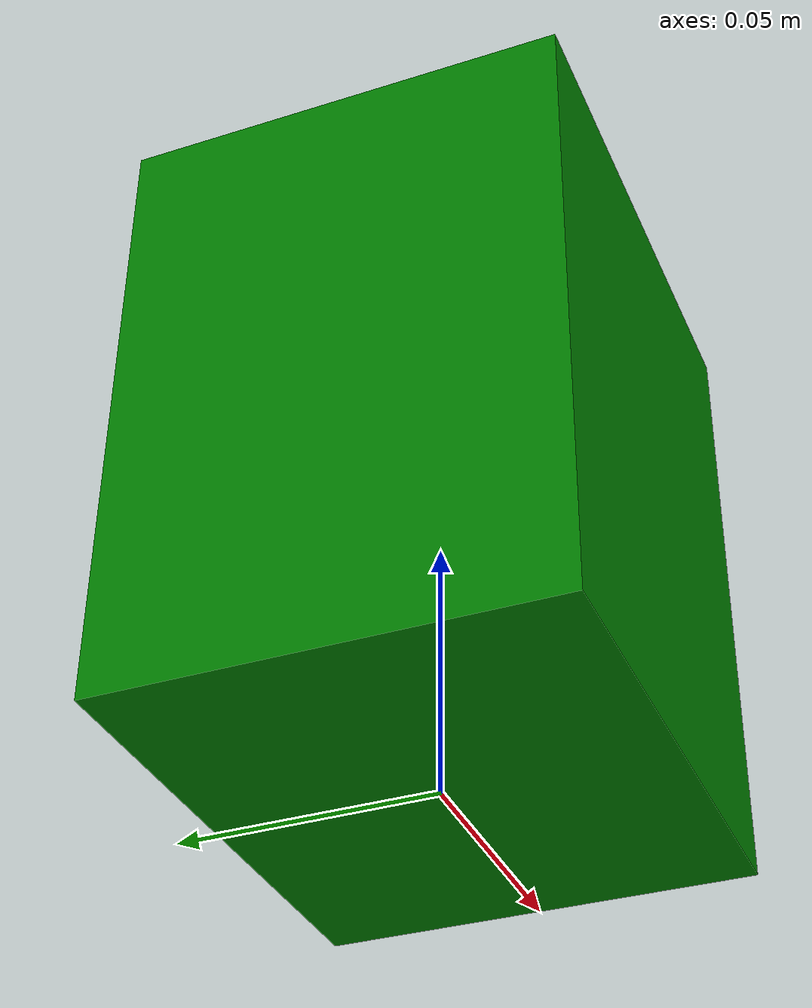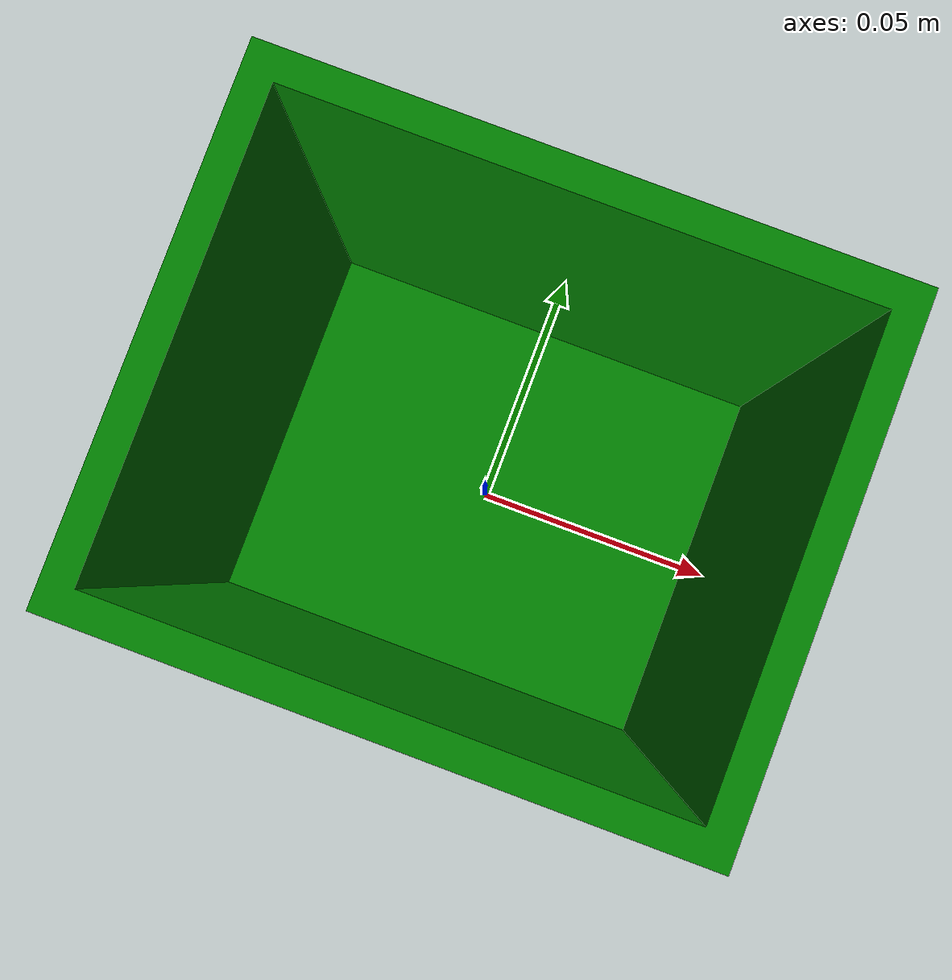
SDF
<?xml version='1.0'?>
<sdf version='1.7'>
  <model name='green_trash_can'>
    <pose>0 0 0 0 0 0</pose>
    <link name='trash_can'>
      <collision name='trash_can_collision'>
        <pose>0 0 0 0 0 0</pose>
        <geometry>
          <mesh>
            <uri>model://green_trash_can/meshes/can.stl</uri>
          </mesh>
        </geometry>
      </collision>
      <visual name='trash_can_visual'>
        <pose>0 0 0 0 0 0</pose>
        <geometry>
          <mesh>
            <uri>model://green_trash_can/meshes/can.stl</uri>
          </mesh>
        </geometry>
        <material>
	  <ambient>0 0.5 0</ambient>
	  <diffuse>0 0.5 0</diffuse>
	  <specular>0.1 0.1 0.1 1 1</specular>
        </material>
      </visual>
    </link>
    <static>1</static>
  </model>
</sdf>
